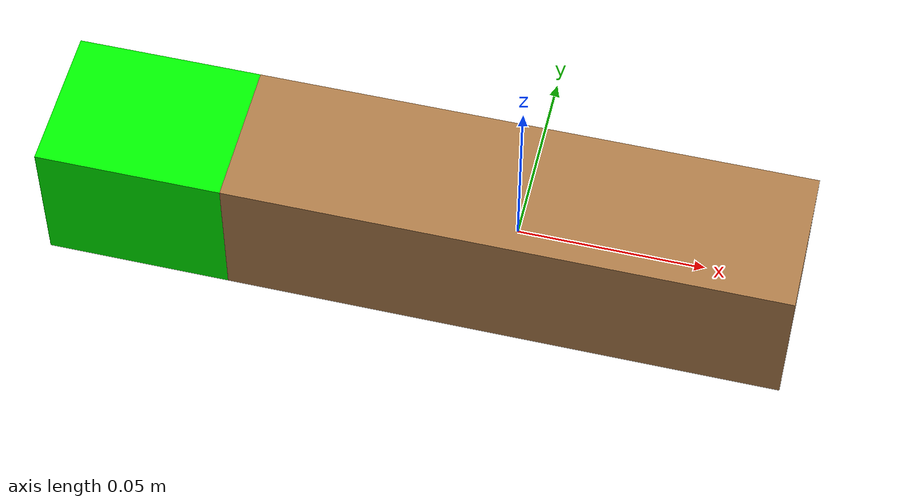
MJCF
<mujoco model="peg">
    <asset>
        <texture file="../textures/red-wood.png" type="cube" name="red-wood"/>
        <material name="red-wood"  reflectance="1.0" shininess="1.0" specular="0.4" texrepeat="1 1" texture="red-wood" texuniform="true"/>
    </asset>
  <worldbody>
    <body>
      <body name="object">
        <geom pos="0 0 0" size="0.075 0.02 0.02" type="box" solimp="0.998 0.998 0.001" solref="0.02 1" density="100" friction="0.95 0.3 0.2" group="0" condim="4" material="red-wood"/>
          <geom pos="-0.10 0 0" size="0.025 0.02 0.02" rgba="0 1 0 1" name="tip_geom" type="box" solimp="0.998 0.998 0.001" solref="0.02 1" density="100" friction="0.95 0.3 0.2" group="0" condim="4"/>
        <site rgba="1 0 0 1" size="0.005" pos="-0.10 0 0" name="tip_site"/>
        <site rgba="1 0 0 1" size="0.003" pos="0 0 0" name="center_site"/>
      </body>
      <site rgba="0 0 0 0" size="0.005" pos="0 0 -0.02" name="bottom_site"/>
      <site rgba="0 0 0 0" size="0.005" pos="0 0 0.02" name="top_site"/>
      <site rgba="0 0 0 0" size="0.005" pos="0.11 0.06 0" name="horizontal_radius_site"/>
    </body>
  </worldbody>
</mujoco>
